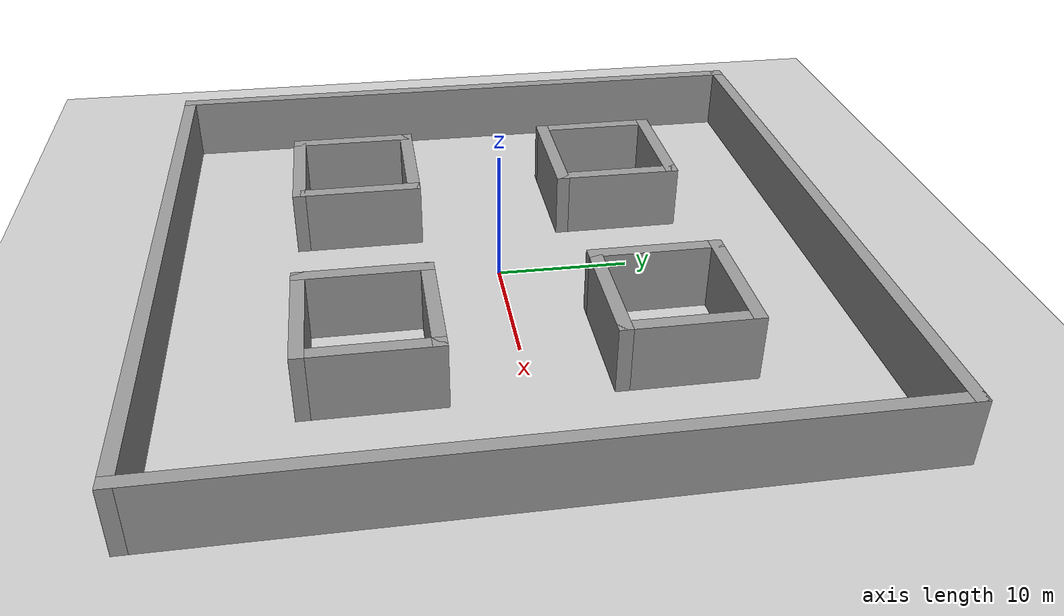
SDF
<?xml version="1.0"?>

<sdf version="1.6">
	<world name="default">
		<include>
			<uri>model://sun</uri>
			<pose>0 0 250  0 0 0</pose>
		</include>

		<include>
			<uri>model://ground_plane</uri>
		</include>

		<include>
			<uri>model://map2</uri>
			<name>map2</name>
			<pose>0 0 0  0 0 0</pose>
		</include>

	</world>
</sdf>

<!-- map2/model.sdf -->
<sdf version='1.7'>
  <model name='map2'>
    <pose>0 0 0 0 -0 0</pose>
    <link name='Wall_12'>
      <collision name='Wall_12_Collision'>
        <geometry>
          <box>
            <size>51 1 5</size>
          </box>
        </geometry>
        <pose>0 0 2.5 0 -0 0</pose>
      </collision>
      <visual name='Wall_12_Visual'>
        <pose>0 0 2.5 0 -0 0</pose>
        <geometry>
          <box>
            <size>51 1 5</size>
          </box>
        </geometry>
        <material>
          <script>
            <uri>file://media/materials/scripts/gazebo.material</uri>
            <name>Gazebo/Grey</name>
          </script>
          <ambient>1 1 1 1</ambient>
        </material>
        <meta>
          <layer>0</layer>
        </meta>
      </visual>
      <pose>-25 0 0 0 -0 -1.5708</pose>
    </link>
    <link name='Wall_14'>
      <collision name='Wall_14_Collision'>
        <geometry>
          <box>
            <size>51 1 5</size>
          </box>
        </geometry>
        <pose>0 0 2.5 0 -0 0</pose>
      </collision>
      <visual name='Wall_14_Visual'>
        <pose>0 0 2.5 0 -0 0</pose>
        <geometry>
          <box>
            <size>51 1 5</size>
          </box>
        </geometry>
        <material>
          <script>
            <uri>file://media/materials/scripts/gazebo.material</uri>
            <name>Gazebo/Grey</name>
          </script>
          <ambient>1 1 1 1</ambient>
        </material>
        <meta>
          <layer>0</layer>
        </meta>
      </visual>
      <pose>0 25 0 0 -0 0</pose>
    </link>
    <link name='Wall_16'>
      <collision name='Wall_16_Collision'>
        <geometry>
          <box>
            <size>51 1 5</size>
          </box>
        </geometry>
        <pose>0 0 2.5 0 -0 0</pose>
      </collision>
      <visual name='Wall_16_Visual'>
        <pose>0 0 2.5 0 -0 0</pose>
        <geometry>
          <box>
            <size>51 1 5</size>
          </box>
        </geometry>
        <material>
          <script>
            <uri>file://media/materials/scripts/gazebo.material</uri>
            <name>Gazebo/Grey</name>
          </script>
          <ambient>1 1 1 1</ambient>
        </material>
        <meta>
          <layer>0</layer>
        </meta>
      </visual>
      <pose>25 0 0 0 -0 -1.5708</pose>
    </link>
    <link name='Wall_18'>
      <collision name='Wall_18_Collision'>
        <geometry>
          <box>
            <size>51 1 5</size>
          </box>
        </geometry>
        <pose>0 0 2.5 0 -0 0</pose>
      </collision>
      <visual name='Wall_18_Visual'>
        <pose>0 0 2.5 0 -0 0</pose>
        <geometry>
          <box>
            <size>51 1 5</size>
          </box>
        </geometry>
        <material>
          <script>
            <uri>file://media/materials/scripts/gazebo.material</uri>
            <name>Gazebo/Grey</name>
          </script>
          <ambient>1 1 1 1</ambient>
        </material>
        <meta>
          <layer>0</layer>
        </meta>
      </visual>
      <pose>0 -25 0 0 -0 0</pose>
    </link>
    <link name='Wall_24'>
      <collision name='Wall_24_Collision'>
        <geometry>
          <box>
            <size>10 1 5</size>
          </box>
        </geometry>
        <pose>0 0 2.5 0 -0 0</pose>
      </collision>
      <visual name='Wall_24_Visual'>
        <pose>0 0 2.5 0 -0 0</pose>
        <geometry>
          <box>
            <size>10 1 5</size>
          </box>
        </geometry>
        <material>
          <script>
            <uri>file://media/materials/scripts/gazebo.material</uri>
            <name>Gazebo/Grey</name>
          </script>
          <ambient>1 1 1 1</ambient>
        </material>
        <meta>
          <layer>0</layer>
        </meta>
      </visual>
      <pose>15 10.5 0 0 -0 -1.5708</pose>
    </link>
    <link name='Wall_26'>
      <collision name='Wall_26_Collision'>
        <geometry>
          <box>
            <size>10 1 5</size>
          </box>
        </geometry>
        <pose>0 0 2.5 0 -0 0</pose>
      </collision>
      <visual name='Wall_26_Visual'>
        <pose>0 0 2.5 0 -0 0</pose>
        <geometry>
          <box>
            <size>10 1 5</size>
          </box>
        </geometry>
        <material>
          <script>
            <uri>file://media/materials/scripts/gazebo.material</uri>
            <name>Gazebo/Grey</name>
          </script>
          <ambient>1 1 1 1</ambient>
        </material>
        <meta>
          <layer>0</layer>
        </meta>
      </visual>
      <pose>10.5 15 0 0 -0 3.14159</pose>
    </link>
    <link name='Wall_28'>
      <collision name='Wall_28_Collision'>
        <geometry>
          <box>
            <size>10 1 5</size>
          </box>
        </geometry>
        <pose>0 0 2.5 0 -0 0</pose>
      </collision>
      <visual name='Wall_28_Visual'>
        <pose>0 0 2.5 0 -0 0</pose>
        <geometry>
          <box>
            <size>10 1 5</size>
          </box>
        </geometry>
        <material>
          <script>
            <uri>file://media/materials/scripts/gazebo.material</uri>
            <name>Gazebo/Grey</name>
          </script>
          <ambient>1 1 1 1</ambient>
        </material>
        <meta>
          <layer>0</layer>
        </meta>
      </visual>
      <pose>10.5 6 0 0 -0 3.14159</pose>
    </link>
    <link name='Wall_30'>
      <collision name='Wall_30_Collision'>
        <geometry>
          <box>
            <size>10 1 5</size>
          </box>
        </geometry>
        <pose>0 0 2.5 0 -0 0</pose>
      </collision>
      <visual name='Wall_30_Visual'>
        <pose>0 0 2.5 0 -0 0</pose>
        <geometry>
          <box>
            <size>10 1 5</size>
          </box>
        </geometry>
        <material>
          <script>
            <uri>file://media/materials/scripts/gazebo.material</uri>
            <name>Gazebo/Grey</name>
          </script>
          <ambient>1 1 1 1</ambient>
        </material>
        <meta>
          <layer>0</layer>
        </meta>
      </visual>
      <pose>6 10.5 0 0 -0 1.5708</pose>
    </link>
    <link name='Wall_49'>
      <collision name='Wall_49_Collision'>
        <geometry>
          <box>
            <size>10 1 5</size>
          </box>
        </geometry>
        <pose>0 0 2.5 0 -0 0</pose>
      </collision>
      <visual name='Wall_49_Visual'>
        <pose>0 0 2.5 0 -0 0</pose>
        <geometry>
          <box>
            <size>10 1 5</size>
          </box>
        </geometry>
        <material>
          <script>
            <uri>file://media/materials/scripts/gazebo.material</uri>
            <name>Gazebo/Grey</name>
          </script>
          <ambient>1 1 1 1</ambient>
        </material>
        <meta>
          <layer>0</layer>
        </meta>
      </visual>
      <pose>-10.5 15 0 0 -0 0</pose>
    </link>
    <link name='Wall_50'>
      <collision name='Wall_50_Collision'>
        <geometry>
          <box>
            <size>10 1 5</size>
          </box>
        </geometry>
        <pose>0 0 2.5 0 -0 0</pose>
      </collision>
      <visual name='Wall_50_Visual'>
        <pose>0 0 2.5 0 -0 0</pose>
        <geometry>
          <box>
            <size>10 1 5</size>
          </box>
        </geometry>
        <material>
          <script>
            <uri>file://media/materials/scripts/gazebo.material</uri>
            <name>Gazebo/Grey</name>
          </script>
          <ambient>1 1 1 1</ambient>
        </material>
        <meta>
          <layer>0</layer>
        </meta>
      </visual>
      <pose>-6 10.5 0 0 -0 -1.5708</pose>
    </link>
    <link name='Wall_51'>
      <collision name='Wall_51_Collision'>
        <geometry>
          <box>
            <size>10 1 5</size>
          </box>
        </geometry>
        <pose>0 0 2.5 0 -0 0</pose>
      </collision>
      <visual name='Wall_51_Visual'>
        <pose>0 0 2.5 0 -0 0</pose>
        <geometry>
          <box>
            <size>10 1 5</size>
          </box>
        </geometry>
        <material>
          <script>
            <uri>file://media/materials/scripts/gazebo.material</uri>
            <name>Gazebo/Grey</name>
          </script>
          <ambient>1 1 1 1</ambient>
        </material>
        <meta>
          <layer>0</layer>
        </meta>
      </visual>
      <pose>-10.5 6 0 0 -0 3.14159</pose>
    </link>
    <link name='Wall_52'>
      <collision name='Wall_52_Collision'>
        <geometry>
          <box>
            <size>10 1 5</size>
          </box>
        </geometry>
        <pose>0 0 2.5 0 -0 0</pose>
      </collision>
      <visual name='Wall_52_Visual'>
        <pose>0 0 2.5 0 -0 0</pose>
        <geometry>
          <box>
            <size>10 1 5</size>
          </box>
        </geometry>
        <material>
          <script>
            <uri>file://media/materials/scripts/gazebo.material</uri>
            <name>Gazebo/Grey</name>
          </script>
          <ambient>1 1 1 1</ambient>
        </material>
        <meta>
          <layer>0</layer>
        </meta>
      </visual>
      <pose>-15 10.5 0 0 -0 1.5708</pose>
    </link>
    <link name='Wall_54'>
      <collision name='Wall_54_Collision'>
        <geometry>
          <box>
            <size>10 1 5</size>
          </box>
        </geometry>
        <pose>0 0 2.5 0 -0 0</pose>
      </collision>
      <visual name='Wall_54_Visual'>
        <pose>0 0 2.5 0 -0 0</pose>
        <geometry>
          <box>
            <size>10 1 5</size>
          </box>
        </geometry>
        <material>
          <script>
            <uri>file://media/materials/scripts/gazebo.material</uri>
            <name>Gazebo/Grey</name>
          </script>
          <ambient>1 1 1 1</ambient>
        </material>
        <meta>
          <layer>0</layer>
        </meta>
      </visual>
      <pose>-10.5 -6 0 0 -0 0</pose>
    </link>
    <link name='Wall_55'>
      <collision name='Wall_55_Collision'>
        <geometry>
          <box>
            <size>10 1 5</size>
          </box>
        </geometry>
        <pose>0 0 2.5 0 -0 0</pose>
      </collision>
      <visual name='Wall_55_Visual'>
        <pose>0 0 2.5 0 -0 0</pose>
        <geometry>
          <box>
            <size>10 1 5</size>
          </box>
        </geometry>
        <material>
          <script>
            <uri>file://media/materials/scripts/gazebo.material</uri>
            <name>Gazebo/Grey</name>
          </script>
          <ambient>1 1 1 1</ambient>
        </material>
        <meta>
          <layer>0</layer>
        </meta>
      </visual>
      <pose>-6 -10.5 0 0 -0 -1.5708</pose>
    </link>
    <link name='Wall_56'>
      <collision name='Wall_56_Collision'>
        <geometry>
          <box>
            <size>10 1 5</size>
          </box>
        </geometry>
        <pose>0 0 2.5 0 -0 0</pose>
      </collision>
      <visual name='Wall_56_Visual'>
        <pose>0 0 2.5 0 -0 0</pose>
        <geometry>
          <box>
            <size>10 1 5</size>
          </box>
        </geometry>
        <material>
          <script>
            <uri>file://media/materials/scripts/gazebo.material</uri>
            <name>Gazebo/Grey</name>
          </script>
          <ambient>1 1 1 1</ambient>
        </material>
        <meta>
          <layer>0</layer>
        </meta>
      </visual>
      <pose>-10.5 -15 0 0 -0 3.14159</pose>
    </link>
    <link name='Wall_57'>
      <collision name='Wall_57_Collision'>
        <geometry>
          <box>
            <size>10 1 5</size>
          </box>
        </geometry>
        <pose>0 0 2.5 0 -0 0</pose>
      </collision>
      <visual name='Wall_57_Visual'>
        <pose>0 0 2.5 0 -0 0</pose>
        <geometry>
          <box>
            <size>10 1 5</size>
          </box>
        </geometry>
        <material>
          <script>
            <uri>file://media/materials/scripts/gazebo.material</uri>
            <name>Gazebo/Grey</name>
          </script>
          <ambient>1 1 1 1</ambient>
        </material>
        <meta>
          <layer>0</layer>
        </meta>
      </visual>
      <pose>-15 -10.5 0 0 -0 1.5708</pose>
    </link>
    <link name='Wall_59'>
      <collision name='Wall_59_Collision'>
        <geometry>
          <box>
            <size>10 1 5</size>
          </box>
        </geometry>
        <pose>0 0 2.5 0 -0 0</pose>
      </collision>
      <visual name='Wall_59_Visual'>
        <pose>0 0 2.5 0 -0 0</pose>
        <geometry>
          <box>
            <size>10 1 5</size>
          </box>
        </geometry>
        <material>
          <script>
            <uri>file://media/materials/scripts/gazebo.material</uri>
            <name>Gazebo/Grey</name>
          </script>
          <ambient>1 1 1 1</ambient>
        </material>
        <meta>
          <layer>0</layer>
        </meta>
      </visual>
      <pose>15 -10.5 0 0 -0 -1.5708</pose>
    </link>
    <link name='Wall_60'>
      <collision name='Wall_60_Collision'>
        <geometry>
          <box>
            <size>10 1 5</size>
          </box>
        </geometry>
        <pose>0 0 2.5 0 -0 0</pose>
      </collision>
      <visual name='Wall_60_Visual'>
        <pose>0 0 2.5 0 -0 0</pose>
        <geometry>
          <box>
            <size>10 1 5</size>
          </box>
        </geometry>
        <material>
          <script>
            <uri>file://media/materials/scripts/gazebo.material</uri>
            <name>Gazebo/Grey</name>
          </script>
          <ambient>1 1 1 1</ambient>
        </material>
        <meta>
          <layer>0</layer>
        </meta>
      </visual>
      <pose>10.5 -15 0 0 -0 3.14159</pose>
    </link>
    <link name='Wall_61'>
      <collision name='Wall_61_Collision'>
        <geometry>
          <box>
            <size>10 1 5</size>
          </box>
        </geometry>
        <pose>0 0 2.5 0 -0 0</pose>
      </collision>
      <visual name='Wall_61_Visual'>
        <pose>0 0 2.5 0 -0 0</pose>
        <geometry>
          <box>
            <size>10 1 5</size>
          </box>
        </geometry>
        <material>
          <script>
            <uri>file://media/materials/scripts/gazebo.material</uri>
            <name>Gazebo/Grey</name>
          </script>
          <ambient>1 1 1 1</ambient>
        </material>
        <meta>
          <layer>0</layer>
        </meta>
      </visual>
      <pose>6 -10.5 0 0 -0 1.5708</pose>
    </link>
    <link name='Wall_62'>
      <collision name='Wall_62_Collision'>
        <geometry>
          <box>
            <size>10 1 5</size>
          </box>
        </geometry>
        <pose>0 0 2.5 0 -0 0</pose>
      </collision>
      <visual name='Wall_62_Visual'>
        <pose>0 0 2.5 0 -0 0</pose>
        <geometry>
          <box>
            <size>10 1 5</size>
          </box>
        </geometry>
        <material>
          <script>
            <uri>file://media/materials/scripts/gazebo.material</uri>
            <name>Gazebo/Grey</name>
          </script>
          <ambient>1 1 1 1</ambient>
        </material>
        <meta>
          <layer>0</layer>
        </meta>
      </visual>
      <pose>10.5 -6 0 0 -0 0</pose>
    </link>
    <static>1</static>
  </model>
</sdf>
